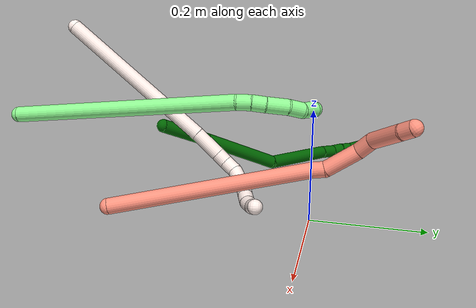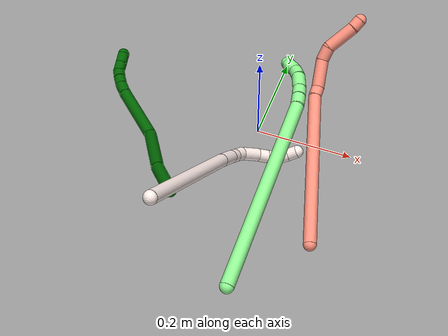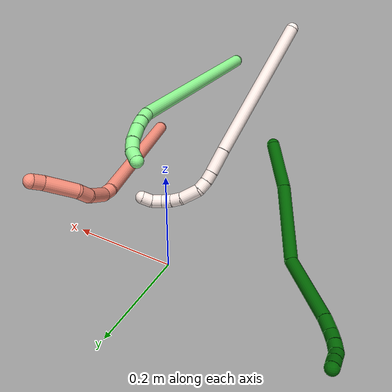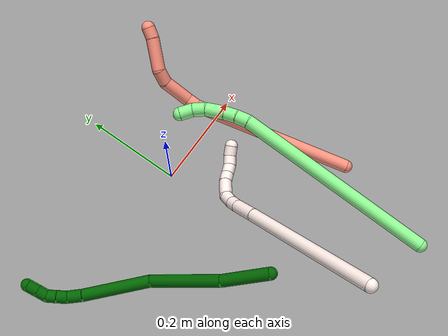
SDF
<sdf version="1.7">
 <world name="default">
  <model name="6">
   <static>0</static>
   <link name="6">
    <collision name="collision-cylinder-e_1_1_4">
     <pose>-0.030635 0.037749 0.007822 -1.36647 -0.67148 0.553532</pose>
     <geometry><cylinder><radius>0.0125</radius><length>0.098482</length></cylinder></geometry>
     <surface>
      <friction><ode><mu>1.16</mu><mu2>1.16</mu2><slip1>0</slip1><slip2>0</slip2></ode></friction>
      <contact><ode><kp>1e+06</kp><kd>1</kd><max_vel>0</max_vel><min_depth>0.001</min_depth></ode></contact>
     </surface>
    </collision>
    <visual name="visual-cylinder-e_1_1_4">
     <pose>-0.030635 0.037749 0.007822 -1.36647 -0.67148 0.553532</pose>
     <geometry><cylinder><radius>0.0125</radius><length>0.098482</length></cylinder></geometry>
     <material><ambient>0 0.392157 0.003922 1</ambient></material>
    </visual>
    <collision name="collision-cylinder-e_2_4_5">
     <pose>-0.110523 0.13324 0.017823 -1.53309 -0.705868 0.681753</pose>
     <geometry><cylinder><radius>0.0125</radius><length>0.151852</length></cylinder></geometry>
     <surface>
      <friction><ode><mu>1.16</mu><mu2>1.16</mu2><slip1>0</slip1><slip2>0</slip2></ode></friction>
      <contact><ode><kp>1e+06</kp><kd>1</kd><max_vel>0</max_vel><min_depth>0.001</min_depth></ode></contact>
     </surface>
    </collision>
    <visual name="visual-cylinder-e_2_4_5">
     <pose>-0.110523 0.13324 0.017823 -1.53309 -0.705868 0.681753</pose>
     <geometry><cylinder><radius>0.0125</radius><length>0.151852</length></cylinder></geometry>
     <material><ambient>0 0.392157 0.003922 1</ambient></material>
    </visual>
    <collision name="collision-cylinder-e_3_5_6">
     <pose>-0.17752 0.254787 0.034473 -1.34774 -0.26484 0.211943</pose>
     <geometry><cylinder><radius>0.0125</radius><length>0.135577</length></cylinder></geometry>
     <surface>
      <friction><ode><mu>1.16</mu><mu2>1.16</mu2><slip1>0</slip1><slip2>0</slip2></ode></friction>
      <contact><ode><kp>1e+06</kp><kd>1</kd><max_vel>0</max_vel><min_depth>0.001</min_depth></ode></contact>
     </surface>
    </collision>
    <visual name="visual-cylinder-e_3_5_6">
     <pose>-0.17752 0.254787 0.034473 -1.34774 -0.26484 0.211943</pose>
     <geometry><cylinder><radius>0.0125</radius><length>0.135577</length></cylinder></geometry>
     <material><ambient>0 0.392157 0.003922 1</ambient></material>
    </visual>
    <collision name="collision-cylinder-e_4_6_7">
     <pose>-0.200072 0.332289 0.050837 -1.43358 -0.334669 0.292285</pose>
     <geometry><cylinder><radius>0.0125</radius><length>0.029281</length></cylinder></geometry>
     <surface>
      <friction><ode><mu>1.16</mu><mu2>1.16</mu2><slip1>0</slip1><slip2>0</slip2></ode></friction>
      <contact><ode><kp>1e+06</kp><kd>1</kd><max_vel>0</max_vel><min_depth>0.001</min_depth></ode></contact>
     </surface>
    </collision>
    <visual name="visual-cylinder-e_4_6_7">
     <pose>-0.200072 0.332289 0.050837 -1.43358 -0.334669 0.292285</pose>
     <geometry><cylinder><radius>0.0125</radius><length>0.029281</length></cylinder></geometry>
     <material><ambient>0 0.392157 0.003922 1</ambient></material>
    </visual>
    <collision name="collision-cylinder-e_5_7_8">
     <pose>-0.207166 0.356325 0.052428 -1.59989 -0.217459 0.223826</pose>
     <geometry><cylinder><radius>0.0125</radius><length>0.021183</length></cylinder></geometry>
     <surface>
      <friction><ode><mu>1.16</mu><mu2>1.16</mu2><slip1>0</slip1><slip2>0</slip2></ode></friction>
      <contact><ode><kp>1e+06</kp><kd>1</kd><max_vel>0</max_vel><min_depth>0.001</min_depth></ode></contact>
     </surface>
    </collision>
    <visual name="visual-cylinder-e_5_7_8">
     <pose>-0.207166 0.356325 0.052428 -1.59989 -0.217459 0.223826</pose>
     <geometry><cylinder><radius>0.0125</radius><length>0.021183</length></cylinder></geometry>
     <material><ambient>0 0.392157 0.003922 1</ambient></material>
    </visual>
    <collision name="collision-cylinder-e_6_8_9">
     <pose>-0.212755 0.376297 0.051379 -1.64832 -0.329379 0.355423</pose>
     <geometry><cylinder><radius>0.0125</radius><length>0.020426</length></cylinder></geometry>
     <surface>
      <friction><ode><mu>1.16</mu><mu2>1.16</mu2><slip1>0</slip1><slip2>0</slip2></ode></friction>
      <contact><ode><kp>1e+06</kp><kd>1</kd><max_vel>0</max_vel><min_depth>0.001</min_depth></ode></contact>
     </surface>
    </collision>
    <visual name="visual-cylinder-e_6_8_9">
     <pose>-0.212755 0.376297 0.051379 -1.64832 -0.329379 0.355423</pose>
     <geometry><cylinder><radius>0.0125</radius><length>0.020426</length></cylinder></geometry>
     <material><ambient>0 0.392157 0.003922 1</ambient></material>
    </visual>
    <collision name="collision-cylinder-e_7_9_10">
     <pose>-0.216455 0.395003 0.045494 -2.08607 -0.038051 0.065261</pose>
     <geometry><cylinder><radius>0.0125</radius><length>0.020864</length></cylinder></geometry>
     <surface>
      <friction><ode><mu>1.16</mu><mu2>1.16</mu2><slip1>0</slip1><slip2>0</slip2></ode></friction>
      <contact><ode><kp>1e+06</kp><kd>1</kd><max_vel>0</max_vel><min_depth>0.001</min_depth></ode></contact>
     </surface>
    </collision>
    <visual name="visual-cylinder-e_7_9_10">
     <pose>-0.216455 0.395003 0.045494 -2.08607 -0.038051 0.065261</pose>
     <geometry><cylinder><radius>0.0125</radius><length>0.020864</length></cylinder></geometry>
     <material><ambient>0 0.392157 0.003922 1</ambient></material>
    </visual>
    <collision name="collision-cylinder-e_8_10_2">
     <pose>-0.217216 0.41382 0.034917 -2.07988 -0.032612 0.055542</pose>
     <geometry><cylinder><radius>0.0125</radius><length>0.022336</length></cylinder></geometry>
     <surface>
      <friction><ode><mu>1.16</mu><mu2>1.16</mu2><slip1>0</slip1><slip2>0</slip2></ode></friction>
      <contact><ode><kp>1e+06</kp><kd>1</kd><max_vel>0</max_vel><min_depth>0.001</min_depth></ode></contact>
     </surface>
    </collision>
    <visual name="visual-cylinder-e_8_10_2">
     <pose>-0.217216 0.41382 0.034917 -2.07988 -0.032612 0.055542</pose>
     <geometry><cylinder><radius>0.0125</radius><length>0.022336</length></cylinder></geometry>
     <material><ambient>0 0.392157 0.003922 1</ambient></material>
    </visual>
    <collision name="collision-sphere-2">
     <pose>-0.21758 0.423567 0.029477 0 -0 0</pose>
     <geometry><sphere><radius>0.0125</radius></sphere></geometry>
     <surface>
      <friction><ode><mu>1.16</mu><mu2>1.16</mu2><slip1>0</slip1><slip2>0</slip2></ode></friction>
      <contact><ode><kp>1e+06</kp><kd>1</kd><max_vel>0</max_vel><min_depth>0.001</min_depth></ode></contact>
     </surface>
    </collision>
    <visual name="visual-sphere-2">
     <pose>-0.21758 0.423567 0.029477 0 -0 0</pose>
     <geometry><sphere><radius>0.0125</radius></sphere></geometry>
     <material><ambient>0 0.392157 0.003922 1</ambient></material>
    </visual>
    <collision name="collision-sphere-10">
     <pose>-0.216852 0.404074 0.040357 0 -0 0</pose>
     <geometry><sphere><radius>0.0125</radius></sphere></geometry>
     <surface>
      <friction><ode><mu>1.16</mu><mu2>1.16</mu2><slip1>0</slip1><slip2>0</slip2></ode></friction>
      <contact><ode><kp>1e+06</kp><kd>1</kd><max_vel>0</max_vel><min_depth>0.001</min_depth></ode></contact>
     </surface>
    </collision>
    <visual name="visual-sphere-10">
     <pose>-0.216852 0.404074 0.040357 0 -0 0</pose>
     <geometry><sphere><radius>0.0125</radius></sphere></geometry>
     <material><ambient>0 0.392157 0.003922 1</ambient></material>
    </visual>
    <collision name="collision-sphere-9">
     <pose>-0.216058 0.385932 0.05063 0 -0 0</pose>
     <geometry><sphere><radius>0.0125</radius></sphere></geometry>
     <surface>
      <friction><ode><mu>1.16</mu><mu2>1.16</mu2><slip1>0</slip1><slip2>0</slip2></ode></friction>
      <contact><ode><kp>1e+06</kp><kd>1</kd><max_vel>0</max_vel><min_depth>0.001</min_depth></ode></contact>
     </surface>
    </collision>
    <visual name="visual-sphere-9">
     <pose>-0.216058 0.385932 0.05063 0 -0 0</pose>
     <geometry><sphere><radius>0.0125</radius></sphere></geometry>
     <material><ambient>0 0.392157 0.003922 1</ambient></material>
    </visual>
    <collision name="collision-sphere-4">
     <pose>-0.06127 0.075498 0.015644 0 -0 0</pose>
     <geometry><sphere><radius>0.0125</radius></sphere></geometry>
     <surface>
      <friction><ode><mu>1.16</mu><mu2>1.16</mu2><slip1>0</slip1><slip2>0</slip2></ode></friction>
      <contact><ode><kp>1e+06</kp><kd>1</kd><max_vel>0</max_vel><min_depth>0.001</min_depth></ode></contact>
     </surface>
    </collision>
    <visual name="visual-sphere-4">
     <pose>-0.06127 0.075498 0.015644 0 -0 0</pose>
     <geometry><sphere><radius>0.0125</radius></sphere></geometry>
     <material><ambient>0 0.392157 0.003922 1</ambient></material>
    </visual>
    <collision name="collision-sphere-1">
     <geometry><sphere><radius>0.0125</radius></sphere></geometry>
     <surface>
      <friction><ode><mu>1.16</mu><mu2>1.16</mu2><slip1>0</slip1><slip2>0</slip2></ode></friction>
      <contact><ode><kp>1e+06</kp><kd>1</kd><max_vel>0</max_vel><min_depth>0.001</min_depth></ode></contact>
     </surface>
    </collision>
    <visual name="visual-sphere-1">
     <geometry><sphere><radius>0.0125</radius></sphere></geometry>
     <material><ambient>0 0.392157 0.003922 1</ambient></material>
    </visual>
    <collision name="collision-sphere-8">
     <pose>-0.209451 0.366662 0.052127 0 -0 0</pose>
     <geometry><sphere><radius>0.0125</radius></sphere></geometry>
     <surface>
      <friction><ode><mu>1.16</mu><mu2>1.16</mu2><slip1>0</slip1><slip2>0</slip2></ode></friction>
      <contact><ode><kp>1e+06</kp><kd>1</kd><max_vel>0</max_vel><min_depth>0.001</min_depth></ode></contact>
     </surface>
    </collision>
    <visual name="visual-sphere-8">
     <pose>-0.209451 0.366662 0.052127 0 -0 0</pose>
     <geometry><sphere><radius>0.0125</radius></sphere></geometry>
     <material><ambient>0 0.392157 0.003922 1</ambient></material>
    </visual>
    <collision name="collision-sphere-5">
     <pose>-0.159776 0.190982 0.020001 0 -0 0</pose>
     <geometry><sphere><radius>0.0125</radius></sphere></geometry>
     <surface>
      <friction><ode><mu>1.16</mu><mu2>1.16</mu2><slip1>0</slip1><slip2>0</slip2></ode></friction>
      <contact><ode><kp>1e+06</kp><kd>1</kd><max_vel>0</max_vel><min_depth>0.001</min_depth></ode></contact>
     </surface>
    </collision>
    <visual name="visual-sphere-5">
     <pose>-0.159776 0.190982 0.020001 0 -0 0</pose>
     <geometry><sphere><radius>0.0125</radius></sphere></geometry>
     <material><ambient>0 0.392157 0.003922 1</ambient></material>
    </visual>
    <collision name="collision-sphere-6">
     <pose>-0.195264 0.318591 0.048946 0 -0 0</pose>
     <geometry><sphere><radius>0.0125</radius></sphere></geometry>
     <surface>
      <friction><ode><mu>1.16</mu><mu2>1.16</mu2><slip1>0</slip1><slip2>0</slip2></ode></friction>
      <contact><ode><kp>1e+06</kp><kd>1</kd><max_vel>0</max_vel><min_depth>0.001</min_depth></ode></contact>
     </surface>
    </collision>
    <visual name="visual-sphere-6">
     <pose>-0.195264 0.318591 0.048946 0 -0 0</pose>
     <geometry><sphere><radius>0.0125</radius></sphere></geometry>
     <material><ambient>0 0.392157 0.003922 1</ambient></material>
    </visual>
    <collision name="collision-sphere-7">
     <pose>-0.204881 0.345987 0.052729 0 -0 0</pose>
     <geometry><sphere><radius>0.0125</radius></sphere></geometry>
     <surface>
      <friction><ode><mu>1.16</mu><mu2>1.16</mu2><slip1>0</slip1><slip2>0</slip2></ode></friction>
      <contact><ode><kp>1e+06</kp><kd>1</kd><max_vel>0</max_vel><min_depth>0.001</min_depth></ode></contact>
     </surface>
    </collision>
    <visual name="visual-sphere-7">
     <pose>-0.204881 0.345987 0.052729 0 -0 0</pose>
     <geometry><sphere><radius>0.0125</radius></sphere></geometry>
     <material><ambient>0 0.392157 0.003922 1</ambient></material>
    </visual>
    <inertial>
     <pose>-0.135656 0.201883 0.027056 0 -0 0</pose>
     <mass>0.5</mass>
     <inertia>
      <ixx>0.000647</ixx>
      <ixy>0</ixy>
      <ixz>0</ixz>
      <iyy>0.000484</iyy>
      <iyz>0</iyz>
      <izz>-0.000195</izz>
     </inertia>
    </inertial>
   </link>
   <pose>-0.073489 -0.287382 0.127826 2.2807 -1.22656 -1.63756</pose>
  </model>
  <model name="11">
   <static>0</static>
   <link name="11">
    <collision name="collision-cylinder-e_1_1_4">
     <pose>0.061854 0.070437 -0.110243 -2.57304 0.441653 -1.31022</pose>
     <geometry><cylinder><radius>0.0125</radius><length>0.289419</length></cylinder></geometry>
     <surface>
      <friction><ode><mu>1.16</mu><mu2>1.16</mu2><slip1>0</slip1><slip2>0</slip2></ode></friction>
      <contact><ode><kp>1e+06</kp><kd>1</kd><max_vel>0</max_vel><min_depth>0.001</min_depth></ode></contact>
     </surface>
    </collision>
    <visual name="visual-cylinder-e_1_1_4">
     <pose>0.061854 0.070437 -0.110243 -2.57304 0.441653 -1.31022</pose>
     <geometry><cylinder><radius>0.0125</radius><length>0.289419</length></cylinder></geometry>
     <material><ambient>1 0.933333 0.909804 1</ambient></material>
    </visual>
    <collision name="collision-cylinder-e_2_4_5">
     <pose>0.135085 0.153629 -0.238348 -2.5215 0.478244 -1.30092</pose>
     <geometry><cylinder><radius>0.0125</radius><length>0.049443</length></cylinder></geometry>
     <surface>
      <friction><ode><mu>1.16</mu><mu2>1.16</mu2><slip1>0</slip1><slip2>0</slip2></ode></friction>
      <contact><ode><kp>1e+06</kp><kd>1</kd><max_vel>0</max_vel><min_depth>0.001</min_depth></ode></contact>
     </surface>
    </collision>
    <visual name="visual-cylinder-e_2_4_5">
     <pose>0.135085 0.153629 -0.238348 -2.5215 0.478244 -1.30092</pose>
     <geometry><cylinder><radius>0.0125</radius><length>0.049443</length></cylinder></geometry>
     <material><ambient>1 0.933333 0.909804 1</ambient></material>
    </visual>
    <collision name="collision-cylinder-e_3_5_6">
     <pose>0.150728 0.171954 -0.263392 -2.4818 0.438777 -1.15444</pose>
     <geometry><cylinder><radius>0.0125</radius><length>0.020082</length></cylinder></geometry>
     <surface>
      <friction><ode><mu>1.16</mu><mu2>1.16</mu2><slip1>0</slip1><slip2>0</slip2></ode></friction>
      <contact><ode><kp>1e+06</kp><kd>1</kd><max_vel>0</max_vel><min_depth>0.001</min_depth></ode></contact>
     </surface>
    </collision>
    <visual name="visual-cylinder-e_3_5_6">
     <pose>0.150728 0.171954 -0.263392 -2.4818 0.438777 -1.15444</pose>
     <geometry><cylinder><radius>0.0125</radius><length>0.020082</length></cylinder></geometry>
     <material><ambient>1 0.933333 0.909804 1</ambient></material>
    </visual>
    <collision name="collision-cylinder-e_4_6_7">
     <pose>0.157765 0.184074 -0.279188 -2.4916 0.250673 -0.715687</pose>
     <geometry><cylinder><radius>0.0125</radius><length>0.022339</length></cylinder></geometry>
     <surface>
      <friction><ode><mu>1.16</mu><mu2>1.16</mu2><slip1>0</slip1><slip2>0</slip2></ode></friction>
      <contact><ode><kp>1e+06</kp><kd>1</kd><max_vel>0</max_vel><min_depth>0.001</min_depth></ode></contact>
     </surface>
    </collision>
    <visual name="visual-cylinder-e_4_6_7">
     <pose>0.157765 0.184074 -0.279188 -2.4916 0.250673 -0.715687</pose>
     <geometry><cylinder><radius>0.0125</radius><length>0.022339</length></cylinder></geometry>
     <material><ambient>1 0.933333 0.909804 1</ambient></material>
    </visual>
    <collision name="collision-cylinder-e_5_7_8">
     <pose>0.158735 0.206521 -0.297926 -2.13783 -0.095229 0.173235</pose>
     <geometry><cylinder><radius>0.0125</radius><length>0.037869</length></cylinder></geometry>
     <surface>
      <friction><ode><mu>1.16</mu><mu2>1.16</mu2><slip1>0</slip1><slip2>0</slip2></ode></friction>
      <contact><ode><kp>1e+06</kp><kd>1</kd><max_vel>0</max_vel><min_depth>0.001</min_depth></ode></contact>
     </surface>
    </collision>
    <visual name="visual-cylinder-e_5_7_8">
     <pose>0.158735 0.206521 -0.297926 -2.13783 -0.095229 0.173235</pose>
     <geometry><cylinder><radius>0.0125</radius><length>0.037869</length></cylinder></geometry>
     <material><ambient>1 0.933333 0.909804 1</ambient></material>
    </visual>
    <collision name="collision-cylinder-e_6_8_9">
     <pose>0.153873 0.231427 -0.311759 -1.9614 -0.304585 0.450581</pose>
     <geometry><cylinder><radius>0.0125</radius><length>0.02042</length></cylinder></geometry>
     <surface>
      <friction><ode><mu>1.16</mu><mu2>1.16</mu2><slip1>0</slip1><slip2>0</slip2></ode></friction>
      <contact><ode><kp>1e+06</kp><kd>1</kd><max_vel>0</max_vel><min_depth>0.001</min_depth></ode></contact>
     </surface>
    </collision>
    <visual name="visual-cylinder-e_6_8_9">
     <pose>0.153873 0.231427 -0.311759 -1.9614 -0.304585 0.450581</pose>
     <geometry><cylinder><radius>0.0125</radius><length>0.02042</length></cylinder></geometry>
     <material><ambient>1 0.933333 0.909804 1</ambient></material>
    </visual>
    <collision name="collision-cylinder-e_7_9_10">
     <pose>0.146388 0.24862 -0.31924 -2.00257 -0.456116 0.695516</pose>
     <geometry><cylinder><radius>0.0125</radius><length>0.020081</length></cylinder></geometry>
     <surface>
      <friction><ode><mu>1.16</mu><mu2>1.16</mu2><slip1>0</slip1><slip2>0</slip2></ode></friction>
      <contact><ode><kp>1e+06</kp><kd>1</kd><max_vel>0</max_vel><min_depth>0.001</min_depth></ode></contact>
     </surface>
    </collision>
    <visual name="visual-cylinder-e_7_9_10">
     <pose>0.146388 0.24862 -0.31924 -2.00257 -0.456116 0.695516</pose>
     <geometry><cylinder><radius>0.0125</radius><length>0.020081</length></cylinder></geometry>
     <material><ambient>1 0.933333 0.909804 1</ambient></material>
    </visual>
    <collision name="collision-cylinder-e_8_10_11">
     <pose>0.136182 0.262535 -0.32901 -2.37919 -0.608894 1.32977</pose>
     <geometry><cylinder><radius>0.0125</radius><length>0.020223</length></cylinder></geometry>
     <surface>
      <friction><ode><mu>1.16</mu><mu2>1.16</mu2><slip1>0</slip1><slip2>0</slip2></ode></friction>
      <contact><ode><kp>1e+06</kp><kd>1</kd><max_vel>0</max_vel><min_depth>0.001</min_depth></ode></contact>
     </surface>
    </collision>
    <visual name="visual-cylinder-e_8_10_11">
     <pose>0.136182 0.262535 -0.32901 -2.37919 -0.608894 1.32977</pose>
     <geometry><cylinder><radius>0.0125</radius><length>0.020223</length></cylinder></geometry>
     <material><ambient>1 0.933333 0.909804 1</ambient></material>
    </visual>
    <collision name="collision-cylinder-e_9_11_2">
     <pose>0.122196 0.271916 -0.339549 -2.46411 -0.953118 1.94387</pose>
     <geometry><cylinder><radius>0.0125</radius><length>0.020124</length></cylinder></geometry>
     <surface>
      <friction><ode><mu>1.16</mu><mu2>1.16</mu2><slip1>0</slip1><slip2>0</slip2></ode></friction>
      <contact><ode><kp>1e+06</kp><kd>1</kd><max_vel>0</max_vel><min_depth>0.001</min_depth></ode></contact>
     </surface>
    </collision>
    <visual name="visual-cylinder-e_9_11_2">
     <pose>0.122196 0.271916 -0.339549 -2.46411 -0.953118 1.94387</pose>
     <geometry><cylinder><radius>0.0125</radius><length>0.020124</length></cylinder></geometry>
     <material><ambient>1 0.933333 0.909804 1</ambient></material>
    </visual>
    <collision name="collision-sphere-2">
     <pose>0.113993 0.275569 -0.344089 0 -0 0</pose>
     <geometry><sphere><radius>0.0125</radius></sphere></geometry>
     <surface>
      <friction><ode><mu>1.16</mu><mu2>1.16</mu2><slip1>0</slip1><slip2>0</slip2></ode></friction>
      <contact><ode><kp>1e+06</kp><kd>1</kd><max_vel>0</max_vel><min_depth>0.001</min_depth></ode></contact>
     </surface>
    </collision>
    <visual name="visual-sphere-2">
     <pose>0.113993 0.275569 -0.344089 0 -0 0</pose>
     <geometry><sphere><radius>0.0125</radius></sphere></geometry>
     <material><ambient>1 0.933333 0.909804 1</ambient></material>
    </visual>
    <collision name="collision-sphere-11">
     <pose>0.130399 0.268264 -0.335009 0 -0 0</pose>
     <geometry><sphere><radius>0.0125</radius></sphere></geometry>
     <surface>
      <friction><ode><mu>1.16</mu><mu2>1.16</mu2><slip1>0</slip1><slip2>0</slip2></ode></friction>
      <contact><ode><kp>1e+06</kp><kd>1</kd><max_vel>0</max_vel><min_depth>0.001</min_depth></ode></contact>
     </surface>
    </collision>
    <visual name="visual-sphere-11">
     <pose>0.130399 0.268264 -0.335009 0 -0 0</pose>
     <geometry><sphere><radius>0.0125</radius></sphere></geometry>
     <material><ambient>1 0.933333 0.909804 1</ambient></material>
    </visual>
    <collision name="collision-sphere-10">
     <pose>0.141966 0.256806 -0.323012 0 -0 0</pose>
     <geometry><sphere><radius>0.0125</radius></sphere></geometry>
     <surface>
      <friction><ode><mu>1.16</mu><mu2>1.16</mu2><slip1>0</slip1><slip2>0</slip2></ode></friction>
      <contact><ode><kp>1e+06</kp><kd>1</kd><max_vel>0</max_vel><min_depth>0.001</min_depth></ode></contact>
     </surface>
    </collision>
    <visual name="visual-sphere-10">
     <pose>0.141966 0.256806 -0.323012 0 -0 0</pose>
     <geometry><sphere><radius>0.0125</radius></sphere></geometry>
     <material><ambient>1 0.933333 0.909804 1</ambient></material>
    </visual>
    <collision name="collision-sphere-9">
     <pose>0.150811 0.240433 -0.315467 0 -0 0</pose>
     <geometry><sphere><radius>0.0125</radius></sphere></geometry>
     <surface>
      <friction><ode><mu>1.16</mu><mu2>1.16</mu2><slip1>0</slip1><slip2>0</slip2></ode></friction>
      <contact><ode><kp>1e+06</kp><kd>1</kd><max_vel>0</max_vel><min_depth>0.001</min_depth></ode></contact>
     </surface>
    </collision>
    <visual name="visual-sphere-9">
     <pose>0.150811 0.240433 -0.315467 0 -0 0</pose>
     <geometry><sphere><radius>0.0125</radius></sphere></geometry>
     <material><ambient>1 0.933333 0.909804 1</ambient></material>
    </visual>
    <collision name="collision-sphere-4">
     <pose>0.123708 0.140874 -0.220486 0 -0 0</pose>
     <geometry><sphere><radius>0.0125</radius></sphere></geometry>
     <surface>
      <friction><ode><mu>1.16</mu><mu2>1.16</mu2><slip1>0</slip1><slip2>0</slip2></ode></friction>
      <contact><ode><kp>1e+06</kp><kd>1</kd><max_vel>0</max_vel><min_depth>0.001</min_depth></ode></contact>
     </surface>
    </collision>
    <visual name="visual-sphere-4">
     <pose>0.123708 0.140874 -0.220486 0 -0 0</pose>
     <geometry><sphere><radius>0.0125</radius></sphere></geometry>
     <material><ambient>1 0.933333 0.909804 1</ambient></material>
    </visual>
    <collision name="collision-sphere-1">
     <geometry><sphere><radius>0.0125</radius></sphere></geometry>
     <surface>
      <friction><ode><mu>1.16</mu><mu2>1.16</mu2><slip1>0</slip1><slip2>0</slip2></ode></friction>
      <contact><ode><kp>1e+06</kp><kd>1</kd><max_vel>0</max_vel><min_depth>0.001</min_depth></ode></contact>
     </surface>
    </collision>
    <visual name="visual-sphere-1">
     <geometry><sphere><radius>0.0125</radius></sphere></geometry>
     <material><ambient>1 0.933333 0.909804 1</ambient></material>
    </visual>
    <collision name="collision-sphere-8">
     <pose>0.156934 0.22242 -0.30805 0 -0 0</pose>
     <geometry><sphere><radius>0.0125</radius></sphere></geometry>
     <surface>
      <friction><ode><mu>1.16</mu><mu2>1.16</mu2><slip1>0</slip1><slip2>0</slip2></ode></friction>
      <contact><ode><kp>1e+06</kp><kd>1</kd><max_vel>0</max_vel><min_depth>0.001</min_depth></ode></contact>
     </surface>
    </collision>
    <visual name="visual-sphere-8">
     <pose>0.156934 0.22242 -0.30805 0 -0 0</pose>
     <geometry><sphere><radius>0.0125</radius></sphere></geometry>
     <material><ambient>1 0.933333 0.909804 1</ambient></material>
    </visual>
    <collision name="collision-sphere-5">
     <pose>0.146463 0.166383 -0.25621 0 -0 0</pose>
     <geometry><sphere><radius>0.0125</radius></sphere></geometry>
     <surface>
      <friction><ode><mu>1.16</mu><mu2>1.16</mu2><slip1>0</slip1><slip2>0</slip2></ode></friction>
      <contact><ode><kp>1e+06</kp><kd>1</kd><max_vel>0</max_vel><min_depth>0.001</min_depth></ode></contact>
     </surface>
    </collision>
    <visual name="visual-sphere-5">
     <pose>0.146463 0.166383 -0.25621 0 -0 0</pose>
     <geometry><sphere><radius>0.0125</radius></sphere></geometry>
     <material><ambient>1 0.933333 0.909804 1</ambient></material>
    </visual>
    <collision name="collision-sphere-6">
     <pose>0.154994 0.177526 -0.270574 0 -0 0</pose>
     <geometry><sphere><radius>0.0125</radius></sphere></geometry>
     <surface>
      <friction><ode><mu>1.16</mu><mu2>1.16</mu2><slip1>0</slip1><slip2>0</slip2></ode></friction>
      <contact><ode><kp>1e+06</kp><kd>1</kd><max_vel>0</max_vel><min_depth>0.001</min_depth></ode></contact>
     </surface>
    </collision>
    <visual name="visual-sphere-6">
     <pose>0.154994 0.177526 -0.270574 0 -0 0</pose>
     <geometry><sphere><radius>0.0125</radius></sphere></geometry>
     <material><ambient>1 0.933333 0.909804 1</ambient></material>
    </visual>
    <collision name="collision-sphere-7">
     <pose>0.160535 0.190622 -0.287802 0 -0 0</pose>
     <geometry><sphere><radius>0.0125</radius></sphere></geometry>
     <surface>
      <friction><ode><mu>1.16</mu><mu2>1.16</mu2><slip1>0</slip1><slip2>0</slip2></ode></friction>
      <contact><ode><kp>1e+06</kp><kd>1</kd><max_vel>0</max_vel><min_depth>0.001</min_depth></ode></contact>
     </surface>
    </collision>
    <visual name="visual-sphere-7">
     <pose>0.160535 0.190622 -0.287802 0 -0 0</pose>
     <geometry><sphere><radius>0.0125</radius></sphere></geometry>
     <material><ambient>1 0.933333 0.909804 1</ambient></material>
    </visual>
    <inertial>
     <pose>0.096876 0.127734 -0.185526 0 -0 0</pose>
     <mass>0.5</mass>
     <inertia>
      <ixx>-0.001288</ixx>
      <ixy>0</ixy>
      <ixz>0</ixz>
      <iyy>-0.001753</iyy>
      <iyz>0</iyz>
      <izz>-0.001904</izz>
     </inertia>
    </inertial>
   </link>
   <pose>-0.035743 -0.43115 0.314221 -1.6617 0.843949 3.04353</pose>
  </model>
  <model name="13">
   <static>0</static>
   <link name="13">
    <collision name="collision-cylinder-e_1_1_4">
     <pose>-0.021764 0.181263 0.028859 -1.41291 -0.118024 0.100751</pose>
     <geometry><cylinder><radius>0.0125</radius><length>0.369663</length></cylinder></geometry>
     <surface>
      <friction><ode><mu>1.16</mu><mu2>1.16</mu2><slip1>0</slip1><slip2>0</slip2></ode></friction>
      <contact><ode><kp>1e+06</kp><kd>1</kd><max_vel>0</max_vel><min_depth>0.001</min_depth></ode></contact>
     </surface>
    </collision>
    <visual name="visual-cylinder-e_1_1_4">
     <pose>-0.021764 0.181263 0.028859 -1.41291 -0.118024 0.100751</pose>
     <geometry><cylinder><radius>0.0125</radius><length>0.369663</length></cylinder></geometry>
     <material><ambient>0.564706 0.984314 0.572549 1</ambient></material>
    </visual>
    <collision name="collision-cylinder-e_2_4_5">
     <pose>-0.047122 0.372966 0.060788 -1.28485 -0.318989 0.239598</pose>
     <geometry><cylinder><radius>0.0125</radius><length>0.022922</length></cylinder></geometry>
     <surface>
      <friction><ode><mu>1.16</mu><mu2>1.16</mu2><slip1>0</slip1><slip2>0</slip2></ode></friction>
      <contact><ode><kp>1e+06</kp><kd>1</kd><max_vel>0</max_vel><min_depth>0.001</min_depth></ode></contact>
     </surface>
    </collision>
    <visual name="visual-cylinder-e_2_4_5">
     <pose>-0.047122 0.372966 0.060788 -1.28485 -0.318989 0.239598</pose>
     <geometry><cylinder><radius>0.0125</radius><length>0.022922</length></cylinder></geometry>
     <material><ambient>0.564706 0.984314 0.572549 1</ambient></material>
    </visual>
    <collision name="collision-cylinder-e_3_5_6">
     <pose>-0.055518 0.392939 0.066726 -1.27851 -0.449455 0.336643</pose>
     <geometry><cylinder><radius>0.0125</radius><length>0.022103</length></cylinder></geometry>
     <surface>
      <friction><ode><mu>1.16</mu><mu2>1.16</mu2><slip1>0</slip1><slip2>0</slip2></ode></friction>
      <contact><ode><kp>1e+06</kp><kd>1</kd><max_vel>0</max_vel><min_depth>0.001</min_depth></ode></contact>
     </surface>
    </collision>
    <visual name="visual-cylinder-e_3_5_6">
     <pose>-0.055518 0.392939 0.066726 -1.27851 -0.449455 0.336643</pose>
     <geometry><cylinder><radius>0.0125</radius><length>0.022103</length></cylinder></geometry>
     <material><ambient>0.564706 0.984314 0.572549 1</ambient></material>
    </visual>
    <collision name="collision-cylinder-e_4_6_7">
     <pose>-0.068532 0.416684 0.07582 -1.15793 -0.486775 0.32183</pose>
     <geometry><cylinder><radius>0.0125</radius><length>0.035114</length></cylinder></geometry>
     <surface>
      <friction><ode><mu>1.16</mu><mu2>1.16</mu2><slip1>0</slip1><slip2>0</slip2></ode></friction>
      <contact><ode><kp>1e+06</kp><kd>1</kd><max_vel>0</max_vel><min_depth>0.001</min_depth></ode></contact>
     </surface>
    </collision>
    <visual name="visual-cylinder-e_4_6_7">
     <pose>-0.068532 0.416684 0.07582 -1.15793 -0.486775 0.32183</pose>
     <geometry><cylinder><radius>0.0125</radius><length>0.035114</length></cylinder></geometry>
     <material><ambient>0.564706 0.984314 0.572549 1</ambient></material>
    </visual>
    <collision name="collision-cylinder-e_5_7_8">
     <pose>-0.084517 0.438921 0.087228 -0.997341 -0.683066 0.382424</pose>
     <geometry><cylinder><radius>0.0125</radius><length>0.024626</length></cylinder></geometry>
     <surface>
      <friction><ode><mu>1.16</mu><mu2>1.16</mu2><slip1>0</slip1><slip2>0</slip2></ode></friction>
      <contact><ode><kp>1e+06</kp><kd>1</kd><max_vel>0</max_vel><min_depth>0.001</min_depth></ode></contact>
     </surface>
    </collision>
    <visual name="visual-cylinder-e_5_7_8">
     <pose>-0.084517 0.438921 0.087228 -0.997341 -0.683066 0.382424</pose>
     <geometry><cylinder><radius>0.0125</radius><length>0.024626</length></cylinder></geometry>
     <material><ambient>0.564706 0.984314 0.572549 1</ambient></material>
    </visual>
    <collision name="collision-cylinder-e_6_8_2">
     <pose>-0.09906 0.452505 0.10172 -0.538425 -0.558193 0.15781</pose>
     <geometry><cylinder><radius>0.0125</radius><length>0.025573</length></cylinder></geometry>
     <surface>
      <friction><ode><mu>1.16</mu><mu2>1.16</mu2><slip1>0</slip1><slip2>0</slip2></ode></friction>
      <contact><ode><kp>1e+06</kp><kd>1</kd><max_vel>0</max_vel><min_depth>0.001</min_depth></ode></contact>
     </surface>
    </collision>
    <visual name="visual-cylinder-e_6_8_2">
     <pose>-0.09906 0.452505 0.10172 -0.538425 -0.558193 0.15781</pose>
     <geometry><cylinder><radius>0.0125</radius><length>0.025573</length></cylinder></geometry>
     <material><ambient>0.564706 0.984314 0.572549 1</ambient></material>
    </visual>
    <collision name="collision-sphere-2">
     <pose>-0.105833 0.458066 0.111031 0 -0 0</pose>
     <geometry><sphere><radius>0.0125</radius></sphere></geometry>
     <surface>
      <friction><ode><mu>1.16</mu><mu2>1.16</mu2><slip1>0</slip1><slip2>0</slip2></ode></friction>
      <contact><ode><kp>1e+06</kp><kd>1</kd><max_vel>0</max_vel><min_depth>0.001</min_depth></ode></contact>
     </surface>
    </collision>
    <visual name="visual-sphere-2">
     <pose>-0.105833 0.458066 0.111031 0 -0 0</pose>
     <geometry><sphere><radius>0.0125</radius></sphere></geometry>
     <material><ambient>0.564706 0.984314 0.572549 1</ambient></material>
    </visual>
    <collision name="collision-sphere-4">
     <pose>-0.043528 0.362525 0.057718 0 -0 0</pose>
     <geometry><sphere><radius>0.0125</radius></sphere></geometry>
     <surface>
      <friction><ode><mu>1.16</mu><mu2>1.16</mu2><slip1>0</slip1><slip2>0</slip2></ode></friction>
      <contact><ode><kp>1e+06</kp><kd>1</kd><max_vel>0</max_vel><min_depth>0.001</min_depth></ode></contact>
     </surface>
    </collision>
    <visual name="visual-sphere-4">
     <pose>-0.043528 0.362525 0.057718 0 -0 0</pose>
     <geometry><sphere><radius>0.0125</radius></sphere></geometry>
     <material><ambient>0.564706 0.984314 0.572549 1</ambient></material>
    </visual>
    <collision name="collision-sphere-1">
     <geometry><sphere><radius>0.0125</radius></sphere></geometry>
     <surface>
      <friction><ode><mu>1.16</mu><mu2>1.16</mu2><slip1>0</slip1><slip2>0</slip2></ode></friction>
      <contact><ode><kp>1e+06</kp><kd>1</kd><max_vel>0</max_vel><min_depth>0.001</min_depth></ode></contact>
     </surface>
    </collision>
    <visual name="visual-sphere-1">
     <geometry><sphere><radius>0.0125</radius></sphere></geometry>
     <material><ambient>0.564706 0.984314 0.572549 1</ambient></material>
    </visual>
    <collision name="collision-sphere-8">
     <pose>-0.092288 0.446943 0.092409 0 -0 0</pose>
     <geometry><sphere><radius>0.0125</radius></sphere></geometry>
     <surface>
      <friction><ode><mu>1.16</mu><mu2>1.16</mu2><slip1>0</slip1><slip2>0</slip2></ode></friction>
      <contact><ode><kp>1e+06</kp><kd>1</kd><max_vel>0</max_vel><min_depth>0.001</min_depth></ode></contact>
     </surface>
    </collision>
    <visual name="visual-sphere-8">
     <pose>-0.092288 0.446943 0.092409 0 -0 0</pose>
     <geometry><sphere><radius>0.0125</radius></sphere></geometry>
     <material><ambient>0.564706 0.984314 0.572549 1</ambient></material>
    </visual>
    <collision name="collision-sphere-5">
     <pose>-0.050716 0.383407 0.063858 0 -0 0</pose>
     <geometry><sphere><radius>0.0125</radius></sphere></geometry>
     <surface>
      <friction><ode><mu>1.16</mu><mu2>1.16</mu2><slip1>0</slip1><slip2>0</slip2></ode></friction>
      <contact><ode><kp>1e+06</kp><kd>1</kd><max_vel>0</max_vel><min_depth>0.001</min_depth></ode></contact>
     </surface>
    </collision>
    <visual name="visual-sphere-5">
     <pose>-0.050716 0.383407 0.063858 0 -0 0</pose>
     <geometry><sphere><radius>0.0125</radius></sphere></geometry>
     <material><ambient>0.564706 0.984314 0.572549 1</ambient></material>
    </visual>
    <collision name="collision-sphere-6">
     <pose>-0.060319 0.40247 0.069594 0 -0 0</pose>
     <geometry><sphere><radius>0.0125</radius></sphere></geometry>
     <surface>
      <friction><ode><mu>1.16</mu><mu2>1.16</mu2><slip1>0</slip1><slip2>0</slip2></ode></friction>
      <contact><ode><kp>1e+06</kp><kd>1</kd><max_vel>0</max_vel><min_depth>0.001</min_depth></ode></contact>
     </surface>
    </collision>
    <visual name="visual-sphere-6">
     <pose>-0.060319 0.40247 0.069594 0 -0 0</pose>
     <geometry><sphere><radius>0.0125</radius></sphere></geometry>
     <material><ambient>0.564706 0.984314 0.572549 1</ambient></material>
    </visual>
    <collision name="collision-sphere-7">
     <pose>-0.076745 0.430898 0.082047 0 -0 0</pose>
     <geometry><sphere><radius>0.0125</radius></sphere></geometry>
     <surface>
      <friction><ode><mu>1.16</mu><mu2>1.16</mu2><slip1>0</slip1><slip2>0</slip2></ode></friction>
      <contact><ode><kp>1e+06</kp><kd>1</kd><max_vel>0</max_vel><min_depth>0.001</min_depth></ode></contact>
     </surface>
    </collision>
    <visual name="visual-sphere-7">
     <pose>-0.076745 0.430898 0.082047 0 -0 0</pose>
     <geometry><sphere><radius>0.0125</radius></sphere></geometry>
     <material><ambient>0.564706 0.984314 0.572549 1</ambient></material>
    </visual>
    <inertial>
     <pose>-0.034747 0.242504 0.041896 0 -0 0</pose>
     <mass>0.5</mass>
     <inertia>
      <ixx>0.004601</ixx>
      <ixy>0</ixy>
      <ixz>0</ixz>
      <iyy>0.001179</iyy>
      <iyz>0</iyz>
      <izz>-0.00364</izz>
     </inertia>
    </inertial>
   </link>
   <pose>0.106132 -0.473422 0.192682 0.421845 -1.13294 -0.579153</pose>
  </model>
  <model name="16">
   <static>0</static>
   <link name="16">
    <collision name="collision-cylinder-e_1_1_4">
     <pose>0.021342 0.144321 0.057216 -1.19336 0.136611 -0.092874</pose>
     <geometry><cylinder><radius>0.0125</radius><length>0.313417</length></cylinder></geometry>
     <surface>
      <friction><ode><mu>1.16</mu><mu2>1.16</mu2><slip1>0</slip1><slip2>0</slip2></ode></friction>
      <contact><ode><kp>1e+06</kp><kd>1</kd><max_vel>0</max_vel><min_depth>0.001</min_depth></ode></contact>
     </surface>
    </collision>
    <visual name="visual-cylinder-e_1_1_4">
     <pose>0.021342 0.144321 0.057216 -1.19336 0.136611 -0.092874</pose>
     <geometry><cylinder><radius>0.0125</radius><length>0.313417</length></cylinder></geometry>
     <material><ambient>1 0.576471 0.494118 1</ambient></material>
    </visual>
    <collision name="collision-cylinder-e_2_4_5">
     <pose>0.041856 0.297846 0.119585 -1.0603 -0.078256 0.045883</pose>
     <geometry><cylinder><radius>0.0125</radius><length>0.021162</length></cylinder></geometry>
     <surface>
      <friction><ode><mu>1.16</mu><mu2>1.16</mu2><slip1>0</slip1><slip2>0</slip2></ode></friction>
      <contact><ode><kp>1e+06</kp><kd>1</kd><max_vel>0</max_vel><min_depth>0.001</min_depth></ode></contact>
     </surface>
    </collision>
    <visual name="visual-cylinder-e_2_4_5">
     <pose>0.041856 0.297846 0.119585 -1.0603 -0.078256 0.045883</pose>
     <geometry><cylinder><radius>0.0125</radius><length>0.021162</length></cylinder></geometry>
     <material><ambient>1 0.576471 0.494118 1</ambient></material>
    </visual>
    <collision name="collision-cylinder-e_3_5_6">
     <pose>0.036335 0.334891 0.126999 -1.48981 -0.166494 0.153581</pose>
     <geometry><cylinder><radius>0.0125</radius><length>0.056649</length></cylinder></geometry>
     <surface>
      <friction><ode><mu>1.16</mu><mu2>1.16</mu2><slip1>0</slip1><slip2>0</slip2></ode></friction>
      <contact><ode><kp>1e+06</kp><kd>1</kd><max_vel>0</max_vel><min_depth>0.001</min_depth></ode></contact>
     </surface>
    </collision>
    <visual name="visual-cylinder-e_3_5_6">
     <pose>0.036335 0.334891 0.126999 -1.48981 -0.166494 0.153581</pose>
     <geometry><cylinder><radius>0.0125</radius><length>0.056649</length></cylinder></geometry>
     <material><ambient>1 0.576471 0.494118 1</ambient></material>
    </visual>
    <collision name="collision-cylinder-e_4_6_7">
     <pose>0.024138 0.374456 0.12908 -1.58606 -0.569217 0.577498</pose>
     <geometry><cylinder><radius>0.0125</radius><length>0.027841</length></cylinder></geometry>
     <surface>
      <friction><ode><mu>1.16</mu><mu2>1.16</mu2><slip1>0</slip1><slip2>0</slip2></ode></friction>
      <contact><ode><kp>1e+06</kp><kd>1</kd><max_vel>0</max_vel><min_depth>0.001</min_depth></ode></contact>
     </surface>
    </collision>
    <visual name="visual-cylinder-e_4_6_7">
     <pose>0.024138 0.374456 0.12908 -1.58606 -0.569217 0.577498</pose>
     <geometry><cylinder><radius>0.0125</radius><length>0.027841</length></cylinder></geometry>
     <material><ambient>1 0.576471 0.494118 1</ambient></material>
    </visual>
    <collision name="collision-cylinder-e_5_7_8">
     <pose>-0.006351 0.403816 0.137108 -1.13524 -0.868487 0.575024</pose>
     <geometry><cylinder><radius>0.0125</radius><length>0.060224</length></cylinder></geometry>
     <surface>
      <friction><ode><mu>1.16</mu><mu2>1.16</mu2><slip1>0</slip1><slip2>0</slip2></ode></friction>
      <contact><ode><kp>1e+06</kp><kd>1</kd><max_vel>0</max_vel><min_depth>0.001</min_depth></ode></contact>
     </surface>
    </collision>
    <visual name="visual-cylinder-e_5_7_8">
     <pose>-0.006351 0.403816 0.137108 -1.13524 -0.868487 0.575024</pose>
     <geometry><cylinder><radius>0.0125</radius><length>0.060224</length></cylinder></geometry>
     <material><ambient>1 0.576471 0.494118 1</ambient></material>
    </visual>
    <collision name="collision-cylinder-e_6_8_2">
     <pose>-0.035794 0.428975 0.148298 -1.19336 -0.67339 0.466856</pose>
     <geometry><cylinder><radius>0.0125</radius><length>0.020707</length></cylinder></geometry>
     <surface>
      <friction><ode><mu>1.16</mu><mu2>1.16</mu2><slip1>0</slip1><slip2>0</slip2></ode></friction>
      <contact><ode><kp>1e+06</kp><kd>1</kd><max_vel>0</max_vel><min_depth>0.001</min_depth></ode></contact>
     </surface>
    </collision>
    <visual name="visual-cylinder-e_6_8_2">
     <pose>-0.035794 0.428975 0.148298 -1.19336 -0.67339 0.466856</pose>
     <geometry><cylinder><radius>0.0125</radius><length>0.020707</length></cylinder></geometry>
     <material><ambient>1 0.576471 0.494118 1</ambient></material>
    </visual>
    <collision name="collision-sphere-2">
     <pose>-0.042251 0.436499 0.151281 0 -0 0</pose>
     <geometry><sphere><radius>0.0125</radius></sphere></geometry>
     <surface>
      <friction><ode><mu>1.16</mu><mu2>1.16</mu2><slip1>0</slip1><slip2>0</slip2></ode></friction>
      <contact><ode><kp>1e+06</kp><kd>1</kd><max_vel>0</max_vel><min_depth>0.001</min_depth></ode></contact>
     </surface>
    </collision>
    <visual name="visual-sphere-2">
     <pose>-0.042251 0.436499 0.151281 0 -0 0</pose>
     <geometry><sphere><radius>0.0125</radius></sphere></geometry>
     <material><ambient>1 0.576471 0.494118 1</ambient></material>
    </visual>
    <collision name="collision-sphere-4">
     <pose>0.042683 0.288642 0.114431 0 -0 0</pose>
     <geometry><sphere><radius>0.0125</radius></sphere></geometry>
     <surface>
      <friction><ode><mu>1.16</mu><mu2>1.16</mu2><slip1>0</slip1><slip2>0</slip2></ode></friction>
      <contact><ode><kp>1e+06</kp><kd>1</kd><max_vel>0</max_vel><min_depth>0.001</min_depth></ode></contact>
     </surface>
    </collision>
    <visual name="visual-sphere-4">
     <pose>0.042683 0.288642 0.114431 0 -0 0</pose>
     <geometry><sphere><radius>0.0125</radius></sphere></geometry>
     <material><ambient>1 0.576471 0.494118 1</ambient></material>
    </visual>
    <collision name="collision-sphere-1">
     <geometry><sphere><radius>0.0125</radius></sphere></geometry>
     <surface>
      <friction><ode><mu>1.16</mu><mu2>1.16</mu2><slip1>0</slip1><slip2>0</slip2></ode></friction>
      <contact><ode><kp>1e+06</kp><kd>1</kd><max_vel>0</max_vel><min_depth>0.001</min_depth></ode></contact>
     </surface>
    </collision>
    <visual name="visual-sphere-1">
     <geometry><sphere><radius>0.0125</radius></sphere></geometry>
     <material><ambient>1 0.576471 0.494118 1</ambient></material>
    </visual>
    <collision name="collision-sphere-8">
     <pose>-0.029337 0.421451 0.145315 0 -0 0</pose>
     <geometry><sphere><radius>0.0125</radius></sphere></geometry>
     <surface>
      <friction><ode><mu>1.16</mu><mu2>1.16</mu2><slip1>0</slip1><slip2>0</slip2></ode></friction>
      <contact><ode><kp>1e+06</kp><kd>1</kd><max_vel>0</max_vel><min_depth>0.001</min_depth></ode></contact>
     </surface>
    </collision>
    <visual name="visual-sphere-8">
     <pose>-0.029337 0.421451 0.145315 0 -0 0</pose>
     <geometry><sphere><radius>0.0125</radius></sphere></geometry>
     <material><ambient>1 0.576471 0.494118 1</ambient></material>
    </visual>
    <collision name="collision-sphere-5">
     <pose>0.041029 0.30705 0.12474 0 -0 0</pose>
     <geometry><sphere><radius>0.0125</radius></sphere></geometry>
     <surface>
      <friction><ode><mu>1.16</mu><mu2>1.16</mu2><slip1>0</slip1><slip2>0</slip2></ode></friction>
      <contact><ode><kp>1e+06</kp><kd>1</kd><max_vel>0</max_vel><min_depth>0.001</min_depth></ode></contact>
     </surface>
    </collision>
    <visual name="visual-sphere-5">
     <pose>0.041029 0.30705 0.12474 0 -0 0</pose>
     <geometry><sphere><radius>0.0125</radius></sphere></geometry>
     <material><ambient>1 0.576471 0.494118 1</ambient></material>
    </visual>
    <collision name="collision-sphere-6">
     <pose>0.031641 0.362732 0.129259 0 -0 0</pose>
     <geometry><sphere><radius>0.0125</radius></sphere></geometry>
     <surface>
      <friction><ode><mu>1.16</mu><mu2>1.16</mu2><slip1>0</slip1><slip2>0</slip2></ode></friction>
      <contact><ode><kp>1e+06</kp><kd>1</kd><max_vel>0</max_vel><min_depth>0.001</min_depth></ode></contact>
     </surface>
    </collision>
    <visual name="visual-sphere-6">
     <pose>0.031641 0.362732 0.129259 0 -0 0</pose>
     <geometry><sphere><radius>0.0125</radius></sphere></geometry>
     <material><ambient>1 0.576471 0.494118 1</ambient></material>
    </visual>
    <collision name="collision-sphere-7">
     <pose>0.016635 0.38618 0.128901 0 -0 0</pose>
     <geometry><sphere><radius>0.0125</radius></sphere></geometry>
     <surface>
      <friction><ode><mu>1.16</mu><mu2>1.16</mu2><slip1>0</slip1><slip2>0</slip2></ode></friction>
      <contact><ode><kp>1e+06</kp><kd>1</kd><max_vel>0</max_vel><min_depth>0.001</min_depth></ode></contact>
     </surface>
    </collision>
    <visual name="visual-sphere-7">
     <pose>0.016635 0.38618 0.128901 0 -0 0</pose>
     <geometry><sphere><radius>0.0125</radius></sphere></geometry>
     <material><ambient>1 0.576471 0.494118 1</ambient></material>
    </visual>
    <inertial>
     <pose>0.018363 0.228268 0.085158 0 -0 0</pose>
     <mass>0.5</mass>
     <inertia>
      <ixx>0.002347</ixx>
      <ixy>0</ixy>
      <ixz>0</ixz>
      <iyy>0.000805</iyy>
      <iyz>0</iyz>
      <izz>-0.002726</izz>
     </inertia>
    </inertial>
   </link>
   <pose>0.19492 -0.285765 0.087497 2.49317 0.487513 -3.11742</pose>
  </model>
 </world>
</sdf>
